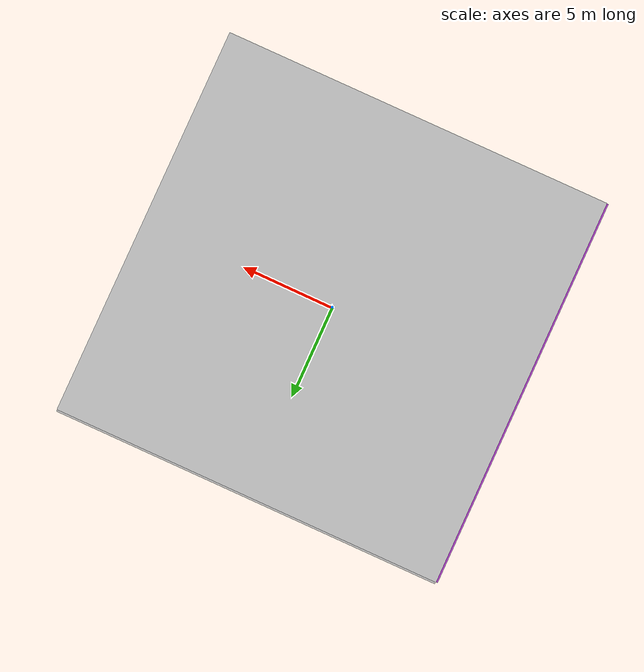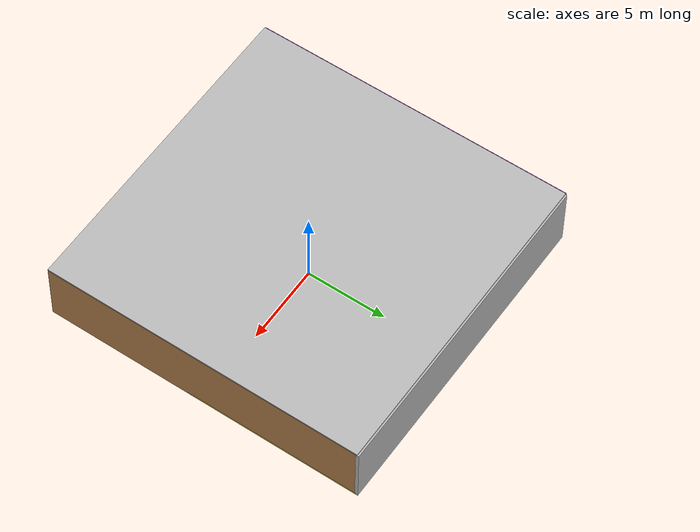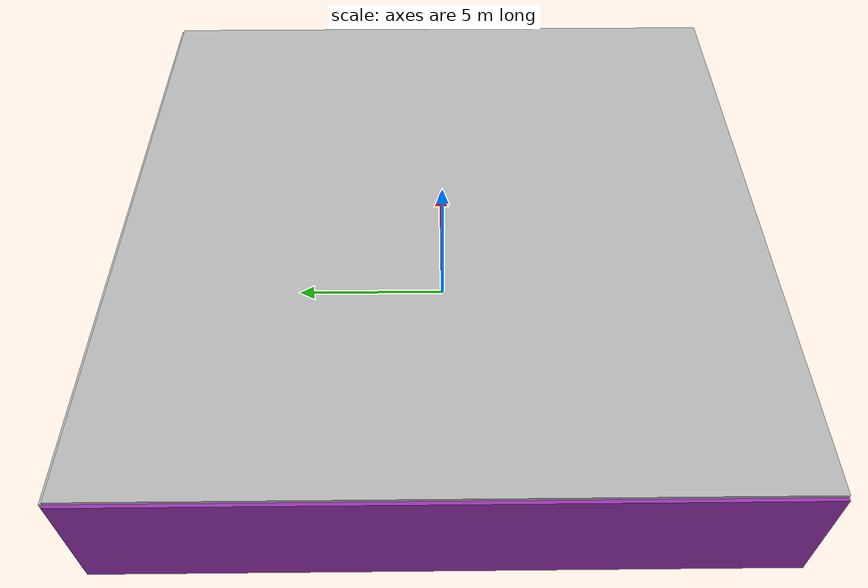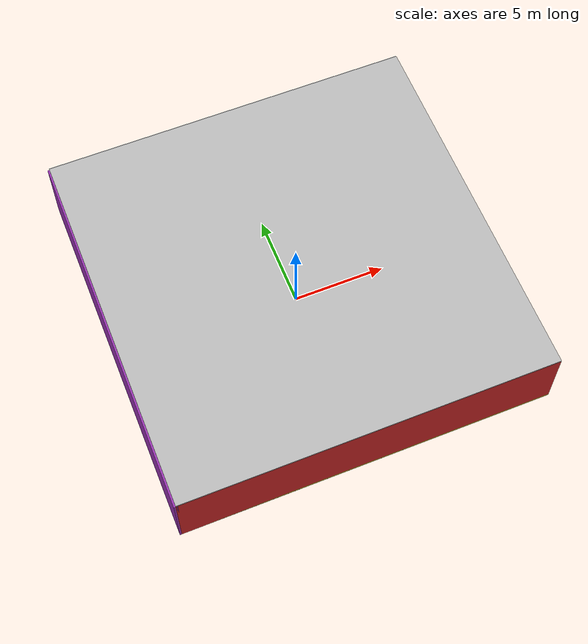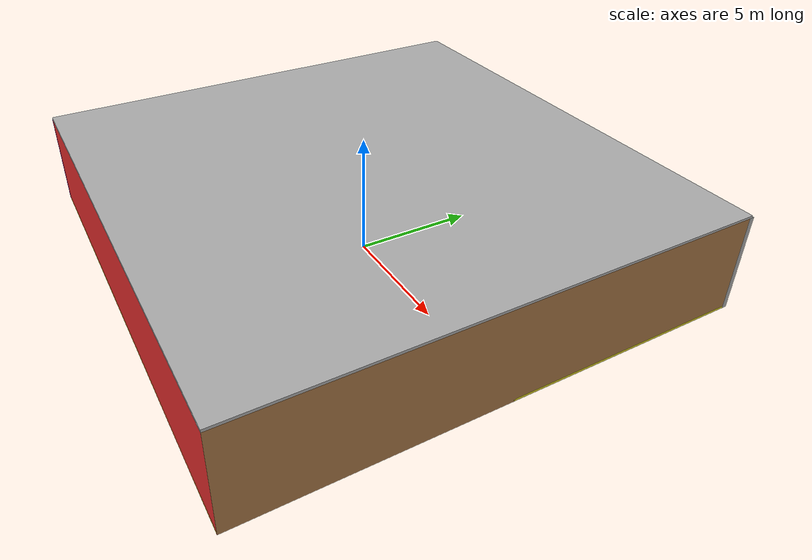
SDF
<sdf version="1.4">
 <world name="default">
  <physics type="ode">
   <max_step_size>0.001</max_step_size>
   <real_time_factor>1</real_time_factor>
   <real_time_update_rate>1000</real_time_update_rate>
   <gravity>0 0 -9.8</gravity>
  </physics>
  <scene><ambient>0.4 0.4 0.4 1</ambient><background>0.7 0.7 0.7 1</background><shadows>1</shadows></scene>
  <model name="Surrounding">
   <static>1</static>
   <link name="Ceiling">
    <collision name="Ceiling_Collision"><geometry><box><size>20 20 0.1</size></box></geometry></collision>
    <visual name="Ceiling_Visual">
     <geometry><box><size>20 20 0.1</size></box></geometry>
     <material>
      <script><uri>file://media/materials/scripts/gazebo.material</uri><name>Gazebo/LightOn</name></script>
     </material>
    </visual>
    <pose>0 0 4.05 0 0 0</pose>
   </link>
   <link name="Wall_South">
    <collision name="Wall_South_Collision">
     <geometry><box><size>20 0 4</size></box></geometry>
     <pose>0 0 2 0 -0 0</pose>
    </collision>
    <visual name="Wall_South_Visual">
     <pose>0 0 2 0 -0 0</pose>
     <geometry><box><size>20 0 4</size></box></geometry>
     <material>
      <script><uri>file://media/materials/scripts/gazebo.material</uri><name>Gazebo/RedGlow</name></script>
     </material>
    </visual>
    <velocity_decay><linear>0</linear><angular>0</angular></velocity_decay>
    <pose>0 -10 0 0 -0 0</pose>
   </link>
   <link name="Wall_East">
    <collision name="Wall_21_Collision">
     <geometry><box><size>20 0 4</size></box></geometry>
     <pose>0 0 2 0 -0 0</pose>
    </collision>
    <visual name="Wall_21_Visual">
     <pose>0 0 2 0 -0 0</pose>
     <geometry><box><size>20 0 4</size></box></geometry>
     <material>
      <script><uri>file://media/materials/scripts/gazebo.material</uri><name>Gazebo/Wood</name></script>
     </material>
    </visual>
    <velocity_decay><linear>0</linear><angular>0</angular></velocity_decay>
    <pose>10 0 0 0 -0 1.5708</pose>
   </link>
   <link name="Wall_North">
    <collision name="Wall_22_Collision">
     <geometry><box><size>20 0.2 4</size></box></geometry>
     <pose>0 0 2 0 -0 0</pose>
    </collision>
    <visual name="Wall_22_Visual">
     <pose>0 0 2 0 -0 0</pose>
     <geometry><box><size>20 0.2 4</size></box></geometry>
     <material>
      <script><uri>file://media/materials/scripts/gazebo.material</uri><name>Gazebo/CloudySky</name></script>
     </material>
    </visual>
    <velocity_decay><linear>0</linear><angular>0</angular></velocity_decay>
    <pose>0 10 0 0 -0 0</pose>
   </link>
   <link name="Wall_West">
    <collision name="Wall_23_Collision">
     <geometry><box><size>20 0.2 4</size></box></geometry>
     <pose>0 0 2 0 -0 0</pose>
    </collision>
    <visual name="Wall_23_Visual">
     <pose>0 0 2 0 -0 0</pose>
     <geometry><box><size>20 0.2 4</size></box></geometry>
     <material>
      <script><uri>file://media/materials/scripts/gazebo.material</uri><name>Gazebo/Purple</name></script>
     </material>
    </visual>
    <velocity_decay><linear>0</linear><angular>0</angular></velocity_decay>
    <pose>-10 0 0 0 0 -1.5708</pose>
   </link>
   <link name="Ground_link">
    <collision name="collision">
     <pose>0 0 .05 0 -0 0</pose>
     <geometry><box><size>20 20 0.1</size></box></geometry>
    </collision>
    <visual name="visual">
     <pose>0 0 .05 0 -0 0</pose>
     <geometry><box><size>20 20 0.1</size></box></geometry>
     <material>
      <script><uri>file://media/materials/scripts/gazebo.material</uri><name>Gazebo/Yellow</name></script>
     </material>
    </visual>
   </link>
   <static>1</static>
  </model>
  <spherical_coordinates>
   <surface_model>EARTH_WGS84</surface_model>
   <latitude_deg>0</latitude_deg>
   <longitude_deg>0</longitude_deg>
   <elevation>0</elevation>
   <heading_deg>0</heading_deg>
  </spherical_coordinates>
  <light name="lightball_0" type="diffuse">
   <diffuse>0.8 0.8 0.8 1</diffuse>
   <specular>0.2 0.2 0.2 1</specular>
   <attenuation>
    <range>100</range>
    <constant>0.7</constant>
    <linear>0.01</linear>
    <quadratic>0.001</quadratic>
   </attenuation>
   <direction>-0.5 0.1 -0.9</direction>
   <pose>-4.01302437518 -8.97688986558 3.19463647806 0 0 0</pose>
  </light>
  <light name="lightball_1" type="diffuse">
   <diffuse>0.8 0.8 0.8 1</diffuse>
   <specular>0.2 0.2 0.2 1</specular>
   <attenuation>
    <range>100</range>
    <constant>0.7</constant>
    <linear>0.01</linear>
    <quadratic>0.001</quadratic>
   </attenuation>
   <direction>-0.5 0.1 -0.9</direction>
   <pose>-1.53625933005 0.657690535202 3.53478812811 0 0 0</pose>
  </light>
  <light name="lightball_2" type="diffuse">
   <diffuse>0.8 0.8 0.8 1</diffuse>
   <specular>0.2 0.2 0.2 1</specular>
   <attenuation>
    <range>100</range>
    <constant>0.7</constant>
    <linear>0.01</linear>
    <quadratic>0.001</quadratic>
   </attenuation>
   <direction>-0.5 0.1 -0.9</direction>
   <pose>-2.73191311853 -0.053602201683 2.23547379081 0 0 0</pose>
  </light>
  <light name="lightball_3" type="diffuse">
   <diffuse>0.8 0.8 0.8 1</diffuse>
   <specular>0.2 0.2 0.2 1</specular>
   <attenuation>
    <range>100</range>
    <constant>0.7</constant>
    <linear>0.01</linear>
    <quadratic>0.001</quadratic>
   </attenuation>
   <direction>-0.5 0.1 -0.9</direction>
   <pose>-4.34394538429 -1.44188910249 0.607709885653 0 0 0</pose>
  </light>
  <light name="lightball_4" type="diffuse">
   <diffuse>0.8 0.8 0.8 1</diffuse>
   <specular>0.2 0.2 0.2 1</specular>
   <attenuation>
    <range>100</range>
    <constant>0.7</constant>
    <linear>0.01</linear>
    <quadratic>0.001</quadratic>
   </attenuation>
   <direction>-0.5 0.1 -0.9</direction>
   <pose>-6.40722767058 4.77461009118 0.688315810049 0 0 0</pose>
  </light>
  <light name="lightball_5" type="diffuse">
   <diffuse>0.8 0.8 0.8 1</diffuse>
   <specular>0.2 0.2 0.2 1</specular>
   <attenuation>
    <range>100</range>
    <constant>0.7</constant>
    <linear>0.01</linear>
    <quadratic>0.001</quadratic>
   </attenuation>
   <direction>-0.5 0.1 -0.9</direction>
   <pose>-2.1465847124 8.03621747225 1.76246254921 0 0 0</pose>
  </light>
  <light name="lightball_6" type="diffuse">
   <diffuse>0.8 0.8 0.8 1</diffuse>
   <specular>0.2 0.2 0.2 1</specular>
   <attenuation>
    <range>100</range>
    <constant>0.7</constant>
    <linear>0.01</linear>
    <quadratic>0.001</quadratic>
   </attenuation>
   <direction>-0.5 0.1 -0.9</direction>
   <pose>9.53471967646 4.04029531086 3.61137553463 0 0 0</pose>
  </light>
  <include>
   <uri>model://robocup_3Dsim_goal</uri>
   <pose>-6.66906102376 -4.11974122801 0 0 0 2.43172881269</pose>
  </include>
  <include><uri>model://table</uri><pose>-2.41393067891 7.99323999002 0 0 0 0.107528306587</pose></include>
  <include><uri>model://table</uri><pose>3.7129227783 4.53765057554 0 0 0 1.22276176496</pose></include>
  <include>
   <uri>model://construction_cone</uri>
   <pose>7.31149482602 7.51808381747 0 0 0 2.96023578404</pose>
  </include>
 </world>
</sdf>

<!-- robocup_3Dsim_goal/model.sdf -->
<sdf version="1.5">
  <model name="robocup_3d_goal">
    <static>true</static>
    <link name="left_post">
      <pose>0 1.05 0.45 0 0 0</pose>
      <collision name="collision">
        <geometry>
          <cylinder>
            <radius>0.05</radius>
            <length>0.9</length>
          </cylinder>
        </geometry>
      </collision>
      <visual name="visual">
        <geometry>
          <cylinder>
            <radius>0.05</radius>
            <length>0.9</length>
          </cylinder>
        </geometry>
        <material>
          <script>
            <uri>file://media/materials/scripts/gazebo.material</uri>
            <name>Gazebo/ZincYellow</name>
          </script>
        </material>
      </visual>
    </link>
    <link name="left_support_horiz_lower">
      <pose>0.30 1.05 0.01 0 0 0</pose>
      <collision name="collision">
        <geometry>
          <box>
            <size>0.50 0.02 0.02</size>
          </box>
        </geometry>
      </collision>
      <visual name="visual">
        <geometry>
          <box>
            <size>0.50 0.02 0.02</size>
          </box>
        </geometry>
        <material>
          <script>
            <uri>file://media/materials/scripts/gazebo.material</uri>
            <name>Gazebo/White</name>
          </script>
        </material>
      </visual>
    </link>
    <link name="left_support_horiz_upper">
      <pose>0.30 1.05 0.79 0 0 0</pose>
      <collision name="collision">
        <geometry>
          <box>
            <size>0.50 0.02 0.02</size>
          </box>
        </geometry>
      </collision>
      <visual name="visual">
        <geometry>
          <box>
            <size>0.50 0.02 0.02</size>
          </box>
        </geometry>
        <material>
          <script>
            <uri>file://media/materials/scripts/gazebo.material</uri>
            <name>Gazebo/White</name>
          </script>
        </material>
      </visual>
    </link>
    <link name="left_support_vertical">
      <pose>0.56 1.05 0.4 0 1.5708 0</pose>
      <collision name="collision">
        <geometry>
          <box>
            <size>0.80 0.02 0.02</size>
          </box>
        </geometry>
      </collision>
      <visual name="visual">
        <geometry>
          <box>
            <size>0.80 0.02 0.02</size>
          </box>
        </geometry>
        <material>
          <script>
            <uri>file://media/materials/scripts/gazebo.material</uri>
            <name>Gazebo/White</name>
          </script>
        </material>
      </visual>
    </link>
    <link name="right_support_horiz_lower">
      <pose>0.30 -1.05 0.01 0 0 0</pose>
      <collision name="collision">
        <geometry>
          <box>
            <size>0.50 0.02 0.02</size>
          </box>
        </geometry>
      </collision>
      <visual name="visual">
        <geometry>
          <box>
            <size>0.50 0.02 0.02</size>
          </box>
        </geometry>
        <material>
          <script>
            <uri>file://media/materials/scripts/gazebo.material</uri>
            <name>Gazebo/White</name>
          </script>
        </material>
      </visual>
    </link>
    <link name="right_support_horiz_upper">
      <pose>0.30 -1.05 0.79 0 0 0</pose>
      <collision name="collision">
        <geometry>
          <box>
            <size>0.50 0.02 0.02</size>
          </box>
        </geometry>
      </collision>
      <visual name="visual">
        <geometry>
          <box>
            <size>0.50 0.02 0.02</size>
          </box>
        </geometry>
        <material>
          <script>
            <uri>file://media/materials/scripts/gazebo.material</uri>
            <name>Gazebo/White</name>
          </script>
        </material>
      </visual>
    </link>
    <link name="right_support_vertical">
      <pose>0.56 -1.05 0.4 0 1.5708 0</pose>
      <collision name="collision">
        <geometry>
          <box>
            <size>0.80 0.02 0.02</size>
          </box>
        </geometry>
      </collision>
      <visual name="visual">
        <geometry>
          <box>
            <size>0.80 0.02 0.02</size>
          </box>
        </geometry>
        <material>
          <script>
            <uri>file://media/materials/scripts/gazebo.material</uri>
            <name>Gazebo/White</name>
          </script>
        </material>
      </visual>
    </link>
    <link name="center_support_horiz_lower">
      <pose>0.56 0 0.01 0 1.5708 0</pose>
      <collision name="collision">
        <geometry>
          <box>
            <size>0.02 2.08 0.02</size>
          </box>
        </geometry>
      </collision>
      <visual name="visual">
        <geometry>
          <box>
            <size>0.02 2.08 0.02</size>
          </box>
        </geometry>
        <material>
          <script>
            <uri>file://media/materials/scripts/gazebo.material</uri>
            <name>Gazebo/White</name>
          </script>
        </material>
      </visual>
    </link>
    <link name="center_support_horiz_upper">
      <pose>0.56 0 0.79 0 1.5708 0</pose>
      <collision name="collision">
        <geometry>
          <box>
            <size>0.02 2.08 0.02</size>
          </box>
        </geometry>
      </collision>
      <visual name="visual">
        <geometry>
          <box>
            <size>0.02 2.08 0.02</size>
          </box>
        </geometry>
        <material>
          <script>
            <uri>file://media/materials/scripts/gazebo.material</uri>
            <name>Gazebo/White</name>
          </script>
        </material>
      </visual>
    </link>
    <link name="right_post">
      <pose>0 -1.05 0.45 0 0 0</pose>
      <collision name="collision">
        <geometry>
          <cylinder>
            <radius>0.05</radius>
            <length>0.9</length>
          </cylinder>
        </geometry>
      </collision>
      <visual name="visual">
        <geometry>
          <cylinder>
            <radius>0.05</radius>
            <length>0.9</length>
          </cylinder>
        </geometry>
        <material>
          <script>
            <uri>file://media/materials/scripts/gazebo.material</uri>
            <name>Gazebo/ZincYellow</name>
          </script>
        </material>
      </visual>
    </link>
    <link name="crossbar">
      <pose>0 0 0.85 1.57 1.57 0</pose>
      <collision name="collision">
        <geometry>
          <cylinder>
            <radius>0.05</radius>
            <length>2.0</length>
          </cylinder>
        </geometry>
      </collision>
      <visual name="visual">
        <geometry>
          <cylinder>
            <radius>0.05</radius>
            <length>2.0</length>
          </cylinder>
        </geometry>
        <material>
          <script>
            <uri>file://media/materials/scripts/gazebo.material</uri>
            <name>Gazebo/ZincYellow</name>
          </script>
        </material>
      </visual>
    </link>
    <link name="center_net">
      <pose>0.56 0 0.40 0 0 0</pose>
      <collision name="collision">
        <geometry>
          <box>
            <size>0.01 2.1 0.80</size>
          </box>
        </geometry>
      </collision>
      <visual name="visual">
        <geometry>
          <box>
            <size>0.01 2.1 0.80</size>
          </box>
        </geometry>
        <material>
          <script>
            <uri>model://../model_source/models/robocup09_spl_field/materials/scripts/</uri>
            <uri>model://../model_source/models/robocup09_spl_field/materials/textures/</uri>
            <name>RoboCup/Net</name>
          </script>
        </material>
      </visual>
    </link>
    <link name="left_net">
      <pose>0.30 1.05 0.40 0 0 0</pose>
      <collision name="collision">
        <geometry>
          <box>
            <size>0.50 0.01 0.76</size>
          </box>
        </geometry>
      </collision>
      <visual name="visual">
        <geometry>
          <box>
            <size>0.50 0.01 0.76</size>
          </box>
        </geometry>
        <material>
          <script>
            <uri>model://../model_source/models/robocup09_spl_field/materials/scripts/</uri>
            <uri>model://../model_source/models/robocup09_spl_field/materials/textures/</uri>
            <name>RoboCup/Net</name>
          </script>
        </material>
      </visual>
    </link>
    <link name="right_net">
      <pose>0.30 -1.05 0.40 0 0 0</pose>
      <collision name="collision">
        <geometry>
          <box>
            <size>0.50 0.01 0.76</size>
          </box>
        </geometry>
      </collision>
      <visual name="visual">
        <geometry>
          <box>
            <size>0.50 0.01 0.76</size>
          </box>
        </geometry>
        <material>
          <script>
            <uri>model://../model_source/models/robocup09_spl_field/materials/scripts/</uri>
            <uri>model://../model_source/models/robocup09_spl_field/materials/textures/</uri>
            <name>RoboCup/Net</name>
          </script>
        </material>
      </visual>
    </link>
  </model>
</sdf>

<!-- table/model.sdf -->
<sdf version="1.5">
  <model name="table">
    <static>true</static>
    <link name="link">
      <collision name="surface">
        <pose>0 0 1.0 0 0 0</pose>
        <geometry>
          <box>
            <size>1.5 0.8 0.03</size>
          </box>
        </geometry>
        <surface>
          <friction>
            <ode>
              <mu>0.6</mu>
              <mu2>0.6</mu2>
            </ode>
          </friction>
        </surface>
      </collision>
      <visual name="visual1">
        <pose>0 0 1.0 0 0 0</pose>
        <geometry>
          <box>
            <size>1.5 0.8 0.03</size>
          </box>
        </geometry>
        <material>
          <script>
            <uri>model://media/materials/scripts/gazebo.material</uri>
            <name>Gazebo/Wood</name>
          </script>
        </material>
      </visual>
      <collision name="front_left_leg">
        <pose>0.68 0.38 0.5 0 0 0</pose>
        <geometry>
          <cylinder>
            <radius>0.02</radius>
            <length>1.0</length>
          </cylinder>
        </geometry>
      </collision>
      <visual name="front_left_leg">
        <pose>0.68 0.38 0.5 0 0 0</pose>
        <geometry>
          <cylinder>
            <radius>0.02</radius>
            <length>1.0</length>
          </cylinder>
        </geometry>
        <material>
          <script>
            <uri>model://media/materials/scripts/gazebo.material</uri>
            <name>Gazebo/Grey</name>
          </script>
        </material>
      </visual>
      <collision name="front_right_leg">
        <pose>0.68 -0.38 0.5 0 0 0</pose>
        <geometry>
          <cylinder>
            <radius>0.02</radius>
            <length>1.0</length>
          </cylinder>
        </geometry>
      </collision>
      <visual name="front_right_leg">
        <pose>0.68 -0.38 0.5 0 0 0</pose>
        <geometry>
          <cylinder>
            <radius>0.02</radius>
            <length>1.0</length>
          </cylinder>
        </geometry>
        <material>
          <script>
            <uri>model://media/materials/scripts/gazebo.material</uri>
            <name>Gazebo/Grey</name>
          </script>
        </material>
      </visual>
      <collision name="back_right_leg">
        <pose>-0.68 -0.38 0.5 0 0 0</pose>
        <geometry>
          <cylinder>
            <radius>0.02</radius>
            <length>1.0</length>
          </cylinder>
        </geometry>
      </collision>
      <visual name="back_right_leg">
        <pose>-0.68 -0.38 0.5 0 0 0</pose>
        <geometry>
          <cylinder>
            <radius>0.02</radius>
            <length>1.0</length>
          </cylinder>
        </geometry>
        <material>
          <script>
            <uri>model://media/materials/scripts/gazebo.material</uri>
            <name>Gazebo/Grey</name>
          </script>
        </material>
      </visual>
      <collision name="back_left_leg">
        <pose>-0.68 0.38 0.5 0 0 0</pose>
        <geometry>
          <cylinder>
            <radius>0.02</radius>
            <length>1.0</length>
          </cylinder>
        </geometry>
      </collision>
      <visual name="back_left_leg">
        <pose>-0.68 0.38 0.5 0 0 0</pose>
        <geometry>
          <cylinder>
            <radius>0.02</radius>
            <length>1.0</length>
          </cylinder>
        </geometry>
        <material>
          <script>
            <uri>model://media/materials/scripts/gazebo.material</uri>
            <name>Gazebo/Grey</name>
          </script>
        </material>
      </visual>
    </link>
  </model>
</sdf>

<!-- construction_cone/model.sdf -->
<sdf version="1.5">
  <model name="Construction Cone">
    <link name="link">
      <collision name="collision">
        <geometry>
          <mesh>
            <scale>10 10 10</scale>
            <uri>file://isr-testbed/construction_cone/meshes/construction_cone.dae</uri>
          </mesh>
        </geometry>
      </collision>
      <visual name="visual">
        <geometry>
          <mesh>
            <scale>10 10 10</scale>
            <uri>file://isr-testbed/construction_cone/meshes/construction_cone.dae</uri>
          </mesh>
        </geometry>
      </visual>
    </link>
  </model>
</sdf>
